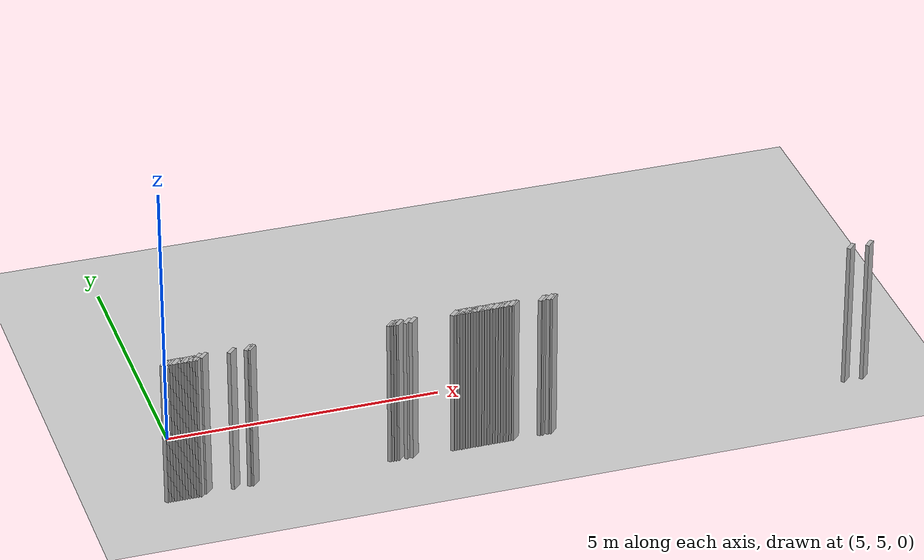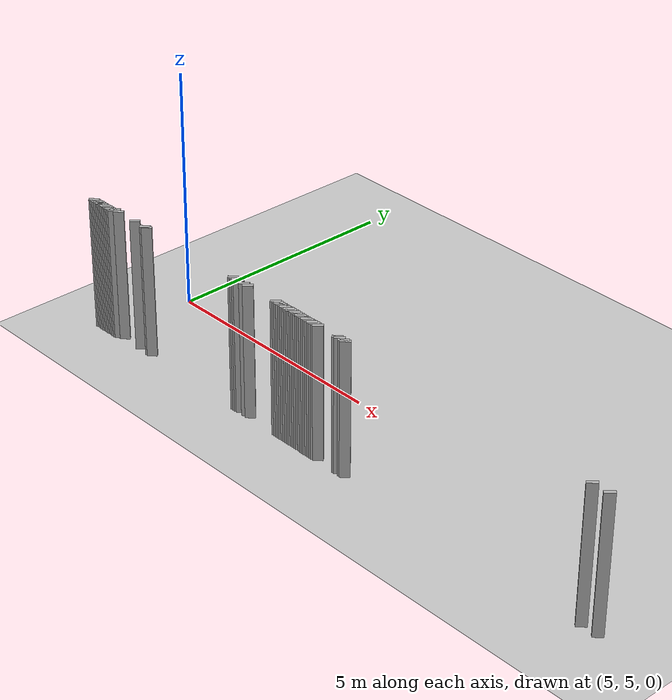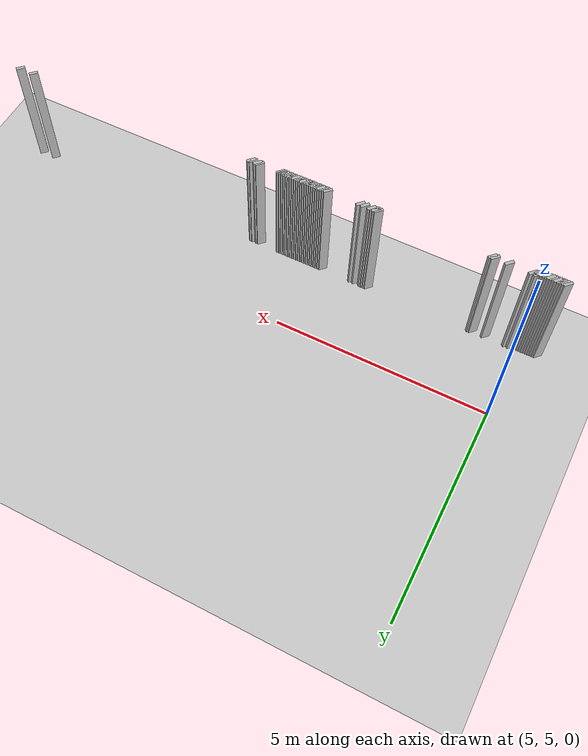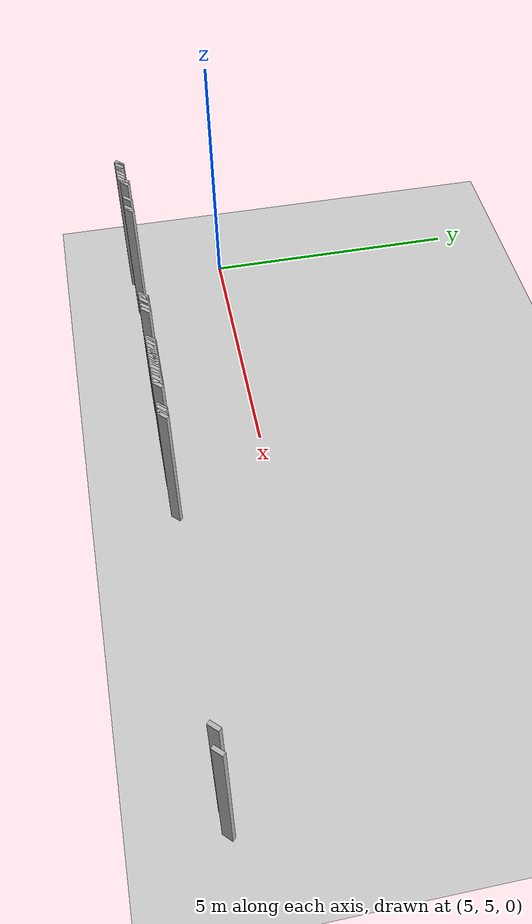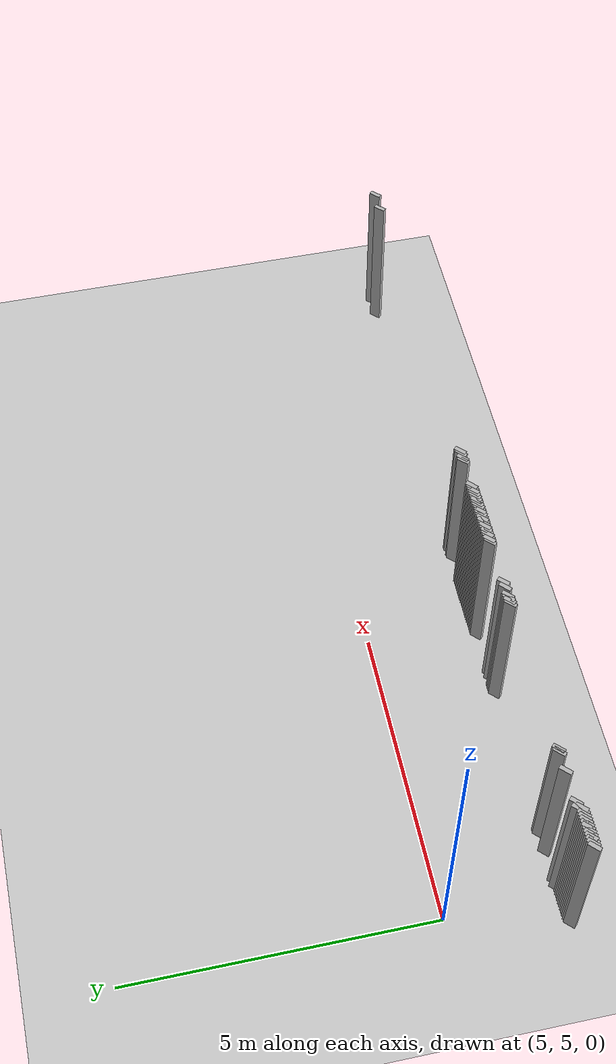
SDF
<sdf version="1.5">
 <world name="default">
  <include><uri>model://ground_plane</uri></include>
  <include><uri>model://sun</uri></include>
  <model name="grey_wall_3606">
   <static>1</static>
   <link name="link">
    <pose>5.15 3.2  1.4 0 0 -0.7853981633974394</pose>
    <collision name="collision">
     <geometry><box><size>0.07071067811865513 .2  2.8</size></box></geometry>
    </collision>
    <visual name="visual">
     <cast_shadows>0</cast_shadows>
     <geometry><box><size>0.07071067811865513 .2  2.8</size></box></geometry>
    </visual>
   </link>
  </model>
  <model name="grey_wall_3607">
   <static>1</static>
   <link name="link">
    <pose>5.25 3.2  1.4 0 0 -0.7853981633974394</pose>
    <collision name="collision">
     <geometry><box><size>0.07071067811865513 .2  2.8</size></box></geometry>
    </collision>
    <visual name="visual">
     <cast_shadows>0</cast_shadows>
     <geometry><box><size>0.07071067811865513 .2  2.8</size></box></geometry>
    </visual>
   </link>
  </model>
  <model name="grey_wall_3608">
   <static>1</static>
   <link name="link">
    <pose>5.75 3.2  1.4 0 0 -0.7853981633974394</pose>
    <collision name="collision">
     <geometry><box><size>0.07071067811865513 .2  2.8</size></box></geometry>
    </collision>
    <visual name="visual">
     <cast_shadows>0</cast_shadows>
     <geometry><box><size>0.07071067811865513 .2  2.8</size></box></geometry>
    </visual>
   </link>
  </model>
  <model name="grey_wall_3609">
   <static>1</static>
   <link name="link">
    <pose>6.050000000000001 3.2  1.4 0 0 -0.7853981633974394</pose>
    <collision name="collision">
     <geometry><box><size>0.07071067811865513 .2  2.8</size></box></geometry>
    </collision>
    <visual name="visual">
     <cast_shadows>0</cast_shadows>
     <geometry><box><size>0.07071067811865513 .2  2.8</size></box></geometry>
    </visual>
   </link>
  </model>
  <model name="grey_wall_3610">
   <static>1</static>
   <link name="link">
    <pose>6.1000000000000005 3.2  1.4 0 0 -0.7853981633974394</pose>
    <collision name="collision">
     <geometry><box><size>0.07071067811865513 .2  2.8</size></box></geometry>
    </collision>
    <visual name="visual">
     <cast_shadows>0</cast_shadows>
     <geometry><box><size>0.07071067811865513 .2  2.8</size></box></geometry>
    </visual>
   </link>
  </model>
  <model name="grey_wall_3611">
   <static>1</static>
   <link name="link">
    <pose>8.6 3.2  1.4 0 0 -0.7853981633974394</pose>
    <collision name="collision">
     <geometry><box><size>0.07071067811865513 .2  2.8</size></box></geometry>
    </collision>
    <visual name="visual">
     <cast_shadows>0</cast_shadows>
     <geometry><box><size>0.07071067811865513 .2  2.8</size></box></geometry>
    </visual>
   </link>
  </model>
  <model name="grey_wall_3612">
   <static>1</static>
   <link name="link">
    <pose>8.65 3.2  1.4 0 0 -0.7853981633974394</pose>
    <collision name="collision">
     <geometry><box><size>0.07071067811865513 .2  2.8</size></box></geometry>
    </collision>
    <visual name="visual">
     <cast_shadows>0</cast_shadows>
     <geometry><box><size>0.07071067811865513 .2  2.8</size></box></geometry>
    </visual>
   </link>
  </model>
  <model name="grey_wall_3613">
   <static>1</static>
   <link name="link">
    <pose>8.700000000000001 3.2  1.4 0 0 -0.7853981633974394</pose>
    <collision name="collision">
     <geometry><box><size>0.07071067811865513 .2  2.8</size></box></geometry>
    </collision>
    <visual name="visual">
     <cast_shadows>0</cast_shadows>
     <geometry><box><size>0.07071067811865513 .2  2.8</size></box></geometry>
    </visual>
   </link>
  </model>
  <model name="grey_wall_3614">
   <static>1</static>
   <link name="link">
    <pose>8.75 3.2  1.4 0 0 -0.7853981633974394</pose>
    <collision name="collision">
     <geometry><box><size>0.07071067811865513 .2  2.8</size></box></geometry>
    </collision>
    <visual name="visual">
     <cast_shadows>0</cast_shadows>
     <geometry><box><size>0.07071067811865513 .2  2.8</size></box></geometry>
    </visual>
   </link>
  </model>
  <model name="grey_wall_3615">
   <static>1</static>
   <link name="link">
    <pose>8.9 3.2  1.4 0 0 -0.7853981633974394</pose>
    <collision name="collision">
     <geometry><box><size>0.07071067811865513 .2  2.8</size></box></geometry>
    </collision>
    <visual name="visual">
     <cast_shadows>0</cast_shadows>
     <geometry><box><size>0.07071067811865513 .2  2.8</size></box></geometry>
    </visual>
   </link>
  </model>
  <model name="grey_wall_3616">
   <static>1</static>
   <link name="link">
    <pose>9.0 3.2  1.4 0 0 -0.7853981633974394</pose>
    <collision name="collision">
     <geometry><box><size>0.07071067811865513 .2  2.8</size></box></geometry>
    </collision>
    <visual name="visual">
     <cast_shadows>0</cast_shadows>
     <geometry><box><size>0.07071067811865513 .2  2.8</size></box></geometry>
    </visual>
   </link>
  </model>
  <model name="grey_wall_3617">
   <static>1</static>
   <link name="link">
    <pose>9.75 3.2  1.4 0 0 -0.7853981633974394</pose>
    <collision name="collision">
     <geometry><box><size>0.07071067811865513 .2  2.8</size></box></geometry>
    </collision>
    <visual name="visual">
     <cast_shadows>0</cast_shadows>
     <geometry><box><size>0.07071067811865513 .2  2.8</size></box></geometry>
    </visual>
   </link>
  </model>
  <model name="grey_wall_3618">
   <static>1</static>
   <link name="link">
    <pose>9.8 3.2  1.4 0 0 -0.7853981633974394</pose>
    <collision name="collision">
     <geometry><box><size>0.07071067811865513 .2  2.8</size></box></geometry>
    </collision>
    <visual name="visual">
     <cast_shadows>0</cast_shadows>
     <geometry><box><size>0.07071067811865513 .2  2.8</size></box></geometry>
    </visual>
   </link>
  </model>
  <model name="grey_wall_3619">
   <static>1</static>
   <link name="link">
    <pose>9.850000000000001 3.2  1.4 0 0 -0.7853981633974394</pose>
    <collision name="collision">
     <geometry><box><size>0.07071067811865513 .2  2.8</size></box></geometry>
    </collision>
    <visual name="visual">
     <cast_shadows>0</cast_shadows>
     <geometry><box><size>0.07071067811865513 .2  2.8</size></box></geometry>
    </visual>
   </link>
  </model>
  <model name="grey_wall_3620">
   <static>1</static>
   <link name="link">
    <pose>9.9 3.2  1.4 0 0 -0.7853981633974394</pose>
    <collision name="collision">
     <geometry><box><size>0.07071067811865513 .2  2.8</size></box></geometry>
    </collision>
    <visual name="visual">
     <cast_shadows>0</cast_shadows>
     <geometry><box><size>0.07071067811865513 .2  2.8</size></box></geometry>
    </visual>
   </link>
  </model>
  <model name="grey_wall_3621">
   <static>1</static>
   <link name="link">
    <pose>9.950000000000001 3.2  1.4 0 0 -0.7853981633974394</pose>
    <collision name="collision">
     <geometry><box><size>0.07071067811865513 .2  2.8</size></box></geometry>
    </collision>
    <visual name="visual">
     <cast_shadows>0</cast_shadows>
     <geometry><box><size>0.07071067811865513 .2  2.8</size></box></geometry>
    </visual>
   </link>
  </model>
  <model name="grey_wall_3622">
   <static>1</static>
   <link name="link">
    <pose>10.0 3.2  1.4 0 0 -0.7853981633974394</pose>
    <collision name="collision">
     <geometry><box><size>0.07071067811865513 .2  2.8</size></box></geometry>
    </collision>
    <visual name="visual">
     <cast_shadows>0</cast_shadows>
     <geometry><box><size>0.07071067811865513 .2  2.8</size></box></geometry>
    </visual>
   </link>
  </model>
  <model name="grey_wall_3623">
   <static>1</static>
   <link name="link">
    <pose>10.05 3.2  1.4 0 0 -0.7853981633974394</pose>
    <collision name="collision">
     <geometry><box><size>0.07071067811865513 .2  2.8</size></box></geometry>
    </collision>
    <visual name="visual">
     <cast_shadows>0</cast_shadows>
     <geometry><box><size>0.07071067811865513 .2  2.8</size></box></geometry>
    </visual>
   </link>
  </model>
  <model name="grey_wall_3624">
   <static>1</static>
   <link name="link">
    <pose>10.100000000000001 3.2  1.4 0 0 -0.7853981633974394</pose>
    <collision name="collision">
     <geometry><box><size>0.07071067811865513 .2  2.8</size></box></geometry>
    </collision>
    <visual name="visual">
     <cast_shadows>0</cast_shadows>
     <geometry><box><size>0.07071067811865513 .2  2.8</size></box></geometry>
    </visual>
   </link>
  </model>
  <model name="grey_wall_3625">
   <static>1</static>
   <link name="link">
    <pose>10.15 3.2  1.4 0 0 -0.7853981633974394</pose>
    <collision name="collision">
     <geometry><box><size>0.07071067811865513 .2  2.8</size></box></geometry>
    </collision>
    <visual name="visual">
     <cast_shadows>0</cast_shadows>
     <geometry><box><size>0.07071067811865513 .2  2.8</size></box></geometry>
    </visual>
   </link>
  </model>
  <model name="grey_wall_3626">
   <static>1</static>
   <link name="link">
    <pose>10.200000000000001 3.2  1.4 0 0 -0.7853981633974394</pose>
    <collision name="collision">
     <geometry><box><size>0.07071067811865513 .2  2.8</size></box></geometry>
    </collision>
    <visual name="visual">
     <cast_shadows>0</cast_shadows>
     <geometry><box><size>0.07071067811865513 .2  2.8</size></box></geometry>
    </visual>
   </link>
  </model>
  <model name="grey_wall_3627">
   <static>1</static>
   <link name="link">
    <pose>10.25 3.2  1.4 0 0 -0.7853981633974394</pose>
    <collision name="collision">
     <geometry><box><size>0.07071067811865513 .2  2.8</size></box></geometry>
    </collision>
    <visual name="visual">
     <cast_shadows>0</cast_shadows>
     <geometry><box><size>0.07071067811865513 .2  2.8</size></box></geometry>
    </visual>
   </link>
  </model>
  <model name="grey_wall_3628">
   <static>1</static>
   <link name="link">
    <pose>10.3 3.2  1.4 0 0 -0.7853981633974394</pose>
    <collision name="collision">
     <geometry><box><size>0.07071067811865513 .2  2.8</size></box></geometry>
    </collision>
    <visual name="visual">
     <cast_shadows>0</cast_shadows>
     <geometry><box><size>0.07071067811865513 .2  2.8</size></box></geometry>
    </visual>
   </link>
  </model>
  <model name="grey_wall_3629">
   <static>1</static>
   <link name="link">
    <pose>10.350000000000001 3.2  1.4 0 0 -0.7853981633974394</pose>
    <collision name="collision">
     <geometry><box><size>0.07071067811865513 .2  2.8</size></box></geometry>
    </collision>
    <visual name="visual">
     <cast_shadows>0</cast_shadows>
     <geometry><box><size>0.07071067811865513 .2  2.8</size></box></geometry>
    </visual>
   </link>
  </model>
  <model name="grey_wall_3630">
   <static>1</static>
   <link name="link">
    <pose>10.4 3.2  1.4 0 0 -0.7853981633974394</pose>
    <collision name="collision">
     <geometry><box><size>0.07071067811865513 .2  2.8</size></box></geometry>
    </collision>
    <visual name="visual">
     <cast_shadows>0</cast_shadows>
     <geometry><box><size>0.07071067811865513 .2  2.8</size></box></geometry>
    </visual>
   </link>
  </model>
  <model name="grey_wall_3631">
   <static>1</static>
   <link name="link">
    <pose>10.450000000000001 3.2  1.4 0 0 -0.7853981633974394</pose>
    <collision name="collision">
     <geometry><box><size>0.07071067811865513 .2  2.8</size></box></geometry>
    </collision>
    <visual name="visual">
     <cast_shadows>0</cast_shadows>
     <geometry><box><size>0.07071067811865513 .2  2.8</size></box></geometry>
    </visual>
   </link>
  </model>
  <model name="grey_wall_3632">
   <static>1</static>
   <link name="link">
    <pose>10.5 3.2  1.4 0 0 -0.7853981633974394</pose>
    <collision name="collision">
     <geometry><box><size>0.07071067811865513 .2  2.8</size></box></geometry>
    </collision>
    <visual name="visual">
     <cast_shadows>0</cast_shadows>
     <geometry><box><size>0.07071067811865513 .2  2.8</size></box></geometry>
    </visual>
   </link>
  </model>
  <model name="grey_wall_3633">
   <static>1</static>
   <link name="link">
    <pose>10.55 3.2  1.4 0 0 -0.7853981633974394</pose>
    <collision name="collision">
     <geometry><box><size>0.07071067811865513 .2  2.8</size></box></geometry>
    </collision>
    <visual name="visual">
     <cast_shadows>0</cast_shadows>
     <geometry><box><size>0.07071067811865513 .2  2.8</size></box></geometry>
    </visual>
   </link>
  </model>
  <model name="grey_wall_3634">
   <static>1</static>
   <link name="link">
    <pose>10.600000000000001 3.2  1.4 0 0 -0.7853981633974394</pose>
    <collision name="collision">
     <geometry><box><size>0.07071067811865513 .2  2.8</size></box></geometry>
    </collision>
    <visual name="visual">
     <cast_shadows>0</cast_shadows>
     <geometry><box><size>0.07071067811865513 .2  2.8</size></box></geometry>
    </visual>
   </link>
  </model>
  <model name="grey_wall_3635">
   <static>1</static>
   <link name="link">
    <pose>10.65 3.2  1.4 0 0 -0.7853981633974394</pose>
    <collision name="collision">
     <geometry><box><size>0.07071067811865513 .2  2.8</size></box></geometry>
    </collision>
    <visual name="visual">
     <cast_shadows>0</cast_shadows>
     <geometry><box><size>0.07071067811865513 .2  2.8</size></box></geometry>
    </visual>
   </link>
  </model>
  <model name="grey_wall_3636">
   <static>1</static>
   <link name="link">
    <pose>10.700000000000001 3.2  1.4 0 0 -0.7853981633974394</pose>
    <collision name="collision">
     <geometry><box><size>0.07071067811865513 .2  2.8</size></box></geometry>
    </collision>
    <visual name="visual">
     <cast_shadows>0</cast_shadows>
     <geometry><box><size>0.07071067811865513 .2  2.8</size></box></geometry>
    </visual>
   </link>
  </model>
  <model name="grey_wall_3637">
   <static>1</static>
   <link name="link">
    <pose>10.75 3.2  1.4 0 0 -0.7853981633974394</pose>
    <collision name="collision">
     <geometry><box><size>0.07071067811865513 .2  2.8</size></box></geometry>
    </collision>
    <visual name="visual">
     <cast_shadows>0</cast_shadows>
     <geometry><box><size>0.07071067811865513 .2  2.8</size></box></geometry>
    </visual>
   </link>
  </model>
  <model name="grey_wall_3638">
   <static>1</static>
   <link name="link">
    <pose>10.8 3.2  1.4 0 0 -0.7853981633974394</pose>
    <collision name="collision">
     <geometry><box><size>0.07071067811865513 .2  2.8</size></box></geometry>
    </collision>
    <visual name="visual">
     <cast_shadows>0</cast_shadows>
     <geometry><box><size>0.07071067811865513 .2  2.8</size></box></geometry>
    </visual>
   </link>
  </model>
  <model name="grey_wall_3639">
   <static>1</static>
   <link name="link">
    <pose>10.850000000000001 3.2  1.4 0 0 -0.7853981633974394</pose>
    <collision name="collision">
     <geometry><box><size>0.07071067811865513 .2  2.8</size></box></geometry>
    </collision>
    <visual name="visual">
     <cast_shadows>0</cast_shadows>
     <geometry><box><size>0.07071067811865513 .2  2.8</size></box></geometry>
    </visual>
   </link>
  </model>
  <model name="grey_wall_3640">
   <static>1</static>
   <link name="link">
    <pose>11.350000000000001 3.2  1.4 0 0 -0.7853981633974394</pose>
    <collision name="collision">
     <geometry><box><size>0.07071067811865513 .2  2.8</size></box></geometry>
    </collision>
    <visual name="visual">
     <cast_shadows>0</cast_shadows>
     <geometry><box><size>0.07071067811865513 .2  2.8</size></box></geometry>
    </visual>
   </link>
  </model>
  <model name="grey_wall_3641">
   <static>1</static>
   <link name="link">
    <pose>11.4 3.2  1.4 0 0 -0.7853981633974394</pose>
    <collision name="collision">
     <geometry><box><size>0.07071067811865513 .2  2.8</size></box></geometry>
    </collision>
    <visual name="visual">
     <cast_shadows>0</cast_shadows>
     <geometry><box><size>0.07071067811865513 .2  2.8</size></box></geometry>
    </visual>
   </link>
  </model>
  <model name="grey_wall_3642">
   <static>1</static>
   <link name="link">
    <pose>11.5 3.2  1.4 0 0 -0.7853981633974394</pose>
    <collision name="collision">
     <geometry><box><size>0.07071067811865513 .2  2.8</size></box></geometry>
    </collision>
    <visual name="visual">
     <cast_shadows>0</cast_shadows>
     <geometry><box><size>0.07071067811865513 .2  2.8</size></box></geometry>
    </visual>
   </link>
  </model>
  <model name="grey_wall_3643">
   <static>1</static>
   <link name="link">
    <pose>11.55 3.2  1.4 0 0 -0.7853981633974394</pose>
    <collision name="collision">
     <geometry><box><size>0.07071067811865513 .2  2.8</size></box></geometry>
    </collision>
    <visual name="visual">
     <cast_shadows>0</cast_shadows>
     <geometry><box><size>0.07071067811865513 .2  2.8</size></box></geometry>
    </visual>
   </link>
  </model>
  <model name="grey_wall_3644">
   <static>1</static>
   <link name="link">
    <pose>17.1 3.2  1.4 0 0 -0.7853981633974749</pose>
    <collision name="collision">
     <geometry><box><size>0.07071067811865261 .2  2.8</size></box></geometry>
    </collision>
    <visual name="visual">
     <cast_shadows>0</cast_shadows>
     <geometry><box><size>0.07071067811865261 .2  2.8</size></box></geometry>
    </visual>
   </link>
  </model>
  <model name="grey_wall_3645">
   <static>1</static>
   <link name="link">
    <pose>17.45 3.2  1.4 0 0 -0.7853981633974749</pose>
    <collision name="collision">
     <geometry><box><size>0.07071067811865261 .2  2.8</size></box></geometry>
    </collision>
    <visual name="visual">
     <cast_shadows>0</cast_shadows>
     <geometry><box><size>0.07071067811865261 .2  2.8</size></box></geometry>
    </visual>
   </link>
  </model>
  <model name="grey_wall_3646">
   <static>1</static>
   <link name="link">
    <pose>4.55 3.1500000000000004  1.4 0 0 -0.7853981633974394</pose>
    <collision name="collision">
     <geometry><box><size>0.07071067811865513 .2  2.8</size></box></geometry>
    </collision>
    <visual name="visual">
     <cast_shadows>0</cast_shadows>
     <geometry><box><size>0.07071067811865513 .2  2.8</size></box></geometry>
    </visual>
   </link>
  </model>
  <model name="grey_wall_3647">
   <static>1</static>
   <link name="link">
    <pose>4.6000000000000005 3.1500000000000004  1.4 0 0 -0.7853981633974394</pose>
    <collision name="collision">
     <geometry><box><size>0.07071067811865513 .2  2.8</size></box></geometry>
    </collision>
    <visual name="visual">
     <cast_shadows>0</cast_shadows>
     <geometry><box><size>0.07071067811865513 .2  2.8</size></box></geometry>
    </visual>
   </link>
  </model>
  <model name="grey_wall_3648">
   <static>1</static>
   <link name="link">
    <pose>4.65 3.1500000000000004  1.4 0 0 -0.7853981633974394</pose>
    <collision name="collision">
     <geometry><box><size>0.07071067811865513 .2  2.8</size></box></geometry>
    </collision>
    <visual name="visual">
     <cast_shadows>0</cast_shadows>
     <geometry><box><size>0.07071067811865513 .2  2.8</size></box></geometry>
    </visual>
   </link>
  </model>
  <model name="grey_wall_3649">
   <static>1</static>
   <link name="link">
    <pose>4.7 3.1500000000000004  1.4 0 0 -0.7853981633974394</pose>
    <collision name="collision">
     <geometry><box><size>0.07071067811865513 .2  2.8</size></box></geometry>
    </collision>
    <visual name="visual">
     <cast_shadows>0</cast_shadows>
     <geometry><box><size>0.07071067811865513 .2  2.8</size></box></geometry>
    </visual>
   </link>
  </model>
  <model name="grey_wall_3650">
   <static>1</static>
   <link name="link">
    <pose>4.75 3.1500000000000004  1.4 0 0 -0.7853981633974394</pose>
    <collision name="collision">
     <geometry><box><size>0.07071067811865513 .2  2.8</size></box></geometry>
    </collision>
    <visual name="visual">
     <cast_shadows>0</cast_shadows>
     <geometry><box><size>0.07071067811865513 .2  2.8</size></box></geometry>
    </visual>
   </link>
  </model>
  <model name="grey_wall_3651">
   <static>1</static>
   <link name="link">
    <pose>4.800000000000001 3.1500000000000004  1.4 0 0 -0.7853981633974394</pose>
    <collision name="collision">
     <geometry><box><size>0.07071067811865513 .2  2.8</size></box></geometry>
    </collision>
    <visual name="visual">
     <cast_shadows>0</cast_shadows>
     <geometry><box><size>0.07071067811865513 .2  2.8</size></box></geometry>
    </visual>
   </link>
  </model>
  <model name="grey_wall_3652">
   <static>1</static>
   <link name="link">
    <pose>4.8500000000000005 3.1500000000000004  1.4 0 0 -0.7853981633974394</pose>
    <collision name="collision">
     <geometry><box><size>0.07071067811865513 .2  2.8</size></box></geometry>
    </collision>
    <visual name="visual">
     <cast_shadows>0</cast_shadows>
     <geometry><box><size>0.07071067811865513 .2  2.8</size></box></geometry>
    </visual>
   </link>
  </model>
  <model name="grey_wall_3653">
   <static>1</static>
   <link name="link">
    <pose>4.9 3.1500000000000004  1.4 0 0 -0.7853981633974394</pose>
    <collision name="collision">
     <geometry><box><size>0.07071067811865513 .2  2.8</size></box></geometry>
    </collision>
    <visual name="visual">
     <cast_shadows>0</cast_shadows>
     <geometry><box><size>0.07071067811865513 .2  2.8</size></box></geometry>
    </visual>
   </link>
  </model>
  <model name="grey_wall_3654">
   <static>1</static>
   <link name="link">
    <pose>4.95 3.1500000000000004  1.4 0 0 -0.7853981633974394</pose>
    <collision name="collision">
     <geometry><box><size>0.07071067811865513 .2  2.8</size></box></geometry>
    </collision>
    <visual name="visual">
     <cast_shadows>0</cast_shadows>
     <geometry><box><size>0.07071067811865513 .2  2.8</size></box></geometry>
    </visual>
   </link>
  </model>
  <model name="grey_wall_3655">
   <static>1</static>
   <link name="link">
    <pose>5.0 3.1500000000000004  1.4 0 0 -0.7853981633974394</pose>
    <collision name="collision">
     <geometry><box><size>0.07071067811865513 .2  2.8</size></box></geometry>
    </collision>
    <visual name="visual">
     <cast_shadows>0</cast_shadows>
     <geometry><box><size>0.07071067811865513 .2  2.8</size></box></geometry>
    </visual>
   </link>
  </model>
  <model name="grey_wall_3656">
   <static>1</static>
   <link name="link">
    <pose>5.050000000000001 3.1500000000000004  1.4 0 0 -0.7853981633974394</pose>
    <collision name="collision">
     <geometry><box><size>0.07071067811865513 .2  2.8</size></box></geometry>
    </collision>
    <visual name="visual">
     <cast_shadows>0</cast_shadows>
     <geometry><box><size>0.07071067811865513 .2  2.8</size></box></geometry>
    </visual>
   </link>
  </model>
  <model name="grey_wall_3657">
   <static>1</static>
   <link name="link">
    <pose>5.1000000000000005 3.1500000000000004  1.4 0 0 -0.7853981633974394</pose>
    <collision name="collision">
     <geometry><box><size>0.07071067811865513 .2  2.8</size></box></geometry>
    </collision>
    <visual name="visual">
     <cast_shadows>0</cast_shadows>
     <geometry><box><size>0.07071067811865513 .2  2.8</size></box></geometry>
    </visual>
   </link>
  </model>
  <model name="grey_wall_3658">
   <static>1</static>
   <link name="link">
    <pose>5.15 3.1500000000000004  1.4 0 0 -0.7853981633974394</pose>
    <collision name="collision">
     <geometry><box><size>0.07071067811865513 .2  2.8</size></box></geometry>
    </collision>
    <visual name="visual">
     <cast_shadows>0</cast_shadows>
     <geometry><box><size>0.07071067811865513 .2  2.8</size></box></geometry>
    </visual>
   </link>
  </model>
 </world>
</sdf>
